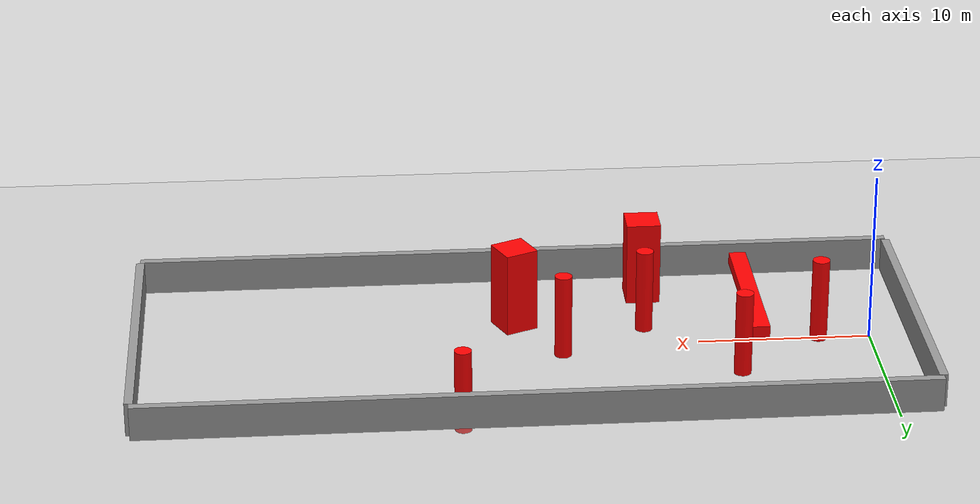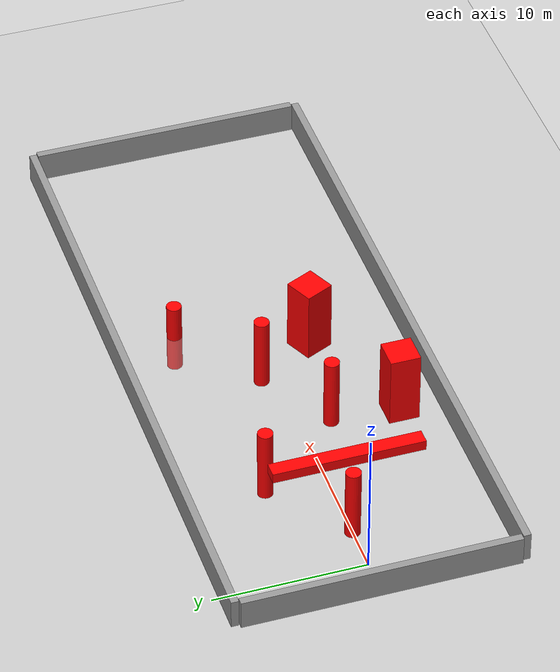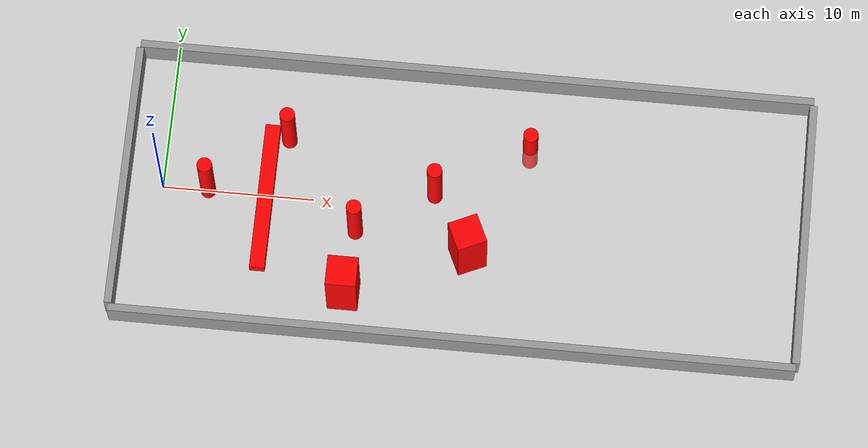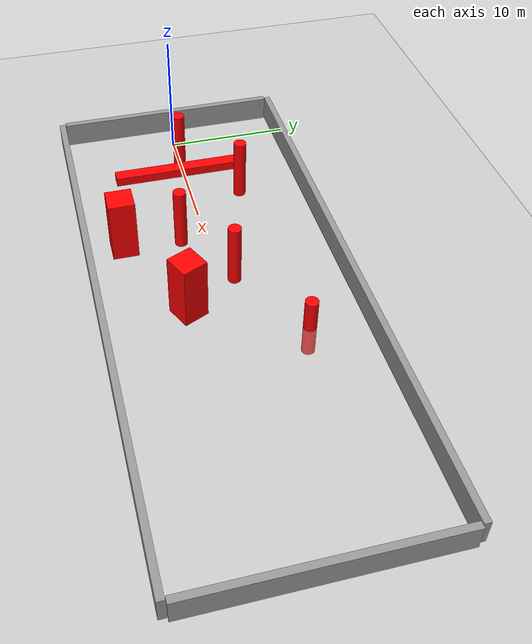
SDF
<sdf version="1.7">
 <world name="default">
  <light name="sun" type="directional">
   <pose>0 0 10 0 -0 0</pose>
   <diffuse>0.8 0.8 0.8 1</diffuse>
   <specular>0.2 0.2 0.2 1</specular>
   <attenuation>
    <range>1000</range>
    <constant>0.9</constant>
    <linear>0.01</linear>
    <quadratic>0.001</quadratic>
   </attenuation>
   <direction>-0.5 0.1 -0.9</direction>
   <spot><inner_angle>0</inner_angle><outer_angle>0</outer_angle><falloff>0</falloff></spot>
  </light>
  <light name="user_directional_light_0" type="directional">
   <pose>10 0 40 0 -0 0</pose>
   <diffuse>0.5 0.5 0.5 1</diffuse>
   <specular>0.1 0.1 0.1 1</specular>
   <direction>0.1 0.0 -0.1</direction>
   <attenuation>
    <range>20</range>
    <constant>0.5</constant>
    <linear>0.01</linear>
    <quadratic>0.001</quadratic>
   </attenuation>
  </light>
  <model name="ground_plane">
   <static>1</static>
   <link name="link">
    <collision name="collision">
     <geometry><plane><normal>0 0 1</normal><size>100 100</size></plane></geometry>
    </collision>
    <visual name="visual">
     <cast_shadows>0</cast_shadows>
     <geometry><plane><normal>0 0 1</normal><size>100 100</size></plane></geometry>
     <material>
      <script><uri>file://media/materials/scripts/gazebo.material</uri><name>Gazebo/Grey</name></script>
     </material>
    </visual>
   </link>
  </model>
  <gravity>0 0 -9.8</gravity>
  <magnetic_field>6e-06 2.3e-05 -4.2e-05</magnetic_field>
  <atmosphere type="adiabatic"/>
  <physics type="ode">
   <max_step_size>0.004</max_step_size>
   <real_time_factor>1</real_time_factor>
   <real_time_update_rate>250</real_time_update_rate>
  </physics>
  <scene><ambient>0.4 0.4 0.4 1</ambient><background>0.7 0.7 0.7 1</background><shadows>1</shadows></scene>
  <spherical_coordinates>
   <surface_model>EARTH_WGS84</surface_model>
   <latitude_deg>0</latitude_deg>
   <longitude_deg>0</longitude_deg>
   <elevation>0</elevation>
   <heading_deg>0</heading_deg>
  </spherical_coordinates>
  <model name="pillar01">
   <link name="link">
    <inertial>
     <mass>700</mass>
     <inertia><ixx>116.667</ixx><ixy>0</ixy><ixz>0</ixz><iyy>116.667</iyy><iyz>0</iyz><izz>116.667</izz></inertia>
    </inertial>
    <visual name="visual">
     <geometry><box><size>1.0 10 0.7</size></box></geometry>
     <material>
      <script><name>Gazebo/Grey</name><uri>file://media/materials/scripts/gazebo.material</uri></script>
      <shader type="pixel"><normal_map>__default__</normal_map></shader>
      <ambient>1 0 0 0</ambient>
      <diffuse>0.7 0.7 0.7 1</diffuse>
      <specular>0.01 0.01 0.01 1</specular>
      <emissive>0 0 0 1</emissive>
     </material>
     <pose>0 0 2.5 0 -0 0</pose>
    </visual>
    <collision name="collision">
     <pose>0 0 2.5 0 -0 0</pose>
     <geometry><box><size>1.0 10 0.7</size></box></geometry>
    </collision>
   </link>
   <static>0</static>
   <pose>7 -1.0 0.0 0 0.0 0.0</pose>
  </model>
  <model name="pillar02">
   <link name="link">
    <inertial>
     <mass>700</mass>
     <inertia><ixx>116.667</ixx><ixy>0</ixy><ixz>0</ixz><iyy>116.667</iyy><iyz>0</iyz><izz>116.667</izz></inertia>
    </inertial>
    <visual name="visual">
     <geometry><box><size>2 2 5</size></box></geometry>
     <material>
      <script><name>Gazebo/Grey</name><uri>file://media/materials/scripts/gazebo.material</uri></script>
      <shader type="pixel"><normal_map>__default__</normal_map></shader>
      <ambient>1 0 0 0</ambient>
      <diffuse>0.7 0.7 0.7 1</diffuse>
      <specular>0.01 0.01 0.01 1</specular>
      <emissive>0 0 0 1</emissive>
     </material>
     <pose>0 0 2.5 0 -0 0</pose>
    </visual>
    <collision name="collision">
     <pose>0 0 2.5 0 -0 0</pose>
     <geometry><box><size>2 2 5</size></box></geometry>
     <surface>
      <friction>
       <ode><mu>1</mu><mu2>1</mu2><fdir1>0 0 0</fdir1><slip1>0</slip1><slip2>0</slip2></ode>
       <torsional>
        <coefficient>1</coefficient>
        <patch_radius>0</patch_radius>
        <surface_radius>0</surface_radius>
        <use_patch_radius>1</use_patch_radius>
        <ode><slip>0</slip></ode>
       </torsional>
      </friction>
      <bounce><restitution_coefficient>0</restitution_coefficient><threshold>1e+06</threshold></bounce>
      <contact>
       <collide_without_contact>0</collide_without_contact>
       <collide_without_contact_bitmask>1</collide_without_contact_bitmask>
       <collide_bitmask>1</collide_bitmask>
       <ode>
        <soft_cfm>0</soft_cfm>
        <soft_erp>0.2</soft_erp>
        <kp>1e+13</kp>
        <kd>1</kd>
        <max_vel>0.01</max_vel>
        <min_depth>0</min_depth>
       </ode>
       <bullet>
        <split_impulse>1</split_impulse>
        <split_impulse_penetration_threshold>-0.01</split_impulse_penetration_threshold>
        <soft_cfm>0</soft_cfm>
        <soft_erp>0.2</soft_erp>
        <kp>1e+13</kp>
        <kd>1</kd>
       </bullet>
      </contact>
     </surface>
    </collision>
   </link>
   <static>0</static>
   <pose>20.5296 -3.03944 0 0 -0 2</pose>
  </model>
  <model name="pillar03">
   <link name="link">
    <inertial>
     <mass>700</mass>
     <inertia><ixx>116.667</ixx><ixy>0</ixy><ixz>0</ixz><iyy>116.667</iyy><iyz>0</iyz><izz>116.667</izz></inertia>
    </inertial>
    <visual name="visual">
     <geometry><box><size>2 2 5</size></box></geometry>
     <material>
      <script><name>Gazebo/Grey</name><uri>file://media/materials/scripts/gazebo.material</uri></script>
      <shader type="pixel"><normal_map>__default__</normal_map></shader>
      <ambient>1 0 0 0</ambient>
      <diffuse>0.7 0.7 0.7 1</diffuse>
      <specular>0.01 0.01 0.01 1</specular>
      <emissive>0 0 0 1</emissive>
     </material>
     <pose>0 0 2.5 0 -0 0</pose>
    </visual>
    <collision name="collision">
     <pose>0 0 2.5 0 -0 0</pose>
     <geometry><box><size>2 2 5</size></box></geometry>
     <surface>
      <friction>
       <ode><mu>1</mu><mu2>1</mu2><fdir1>0 0 0</fdir1><slip1>0</slip1><slip2>0</slip2></ode>
       <torsional>
        <coefficient>1</coefficient>
        <patch_radius>0</patch_radius>
        <surface_radius>0</surface_radius>
        <use_patch_radius>1</use_patch_radius>
        <ode><slip>0</slip></ode>
       </torsional>
      </friction>
      <bounce><restitution_coefficient>0</restitution_coefficient><threshold>1e+06</threshold></bounce>
      <contact>
       <collide_without_contact>0</collide_without_contact>
       <collide_without_contact_bitmask>1</collide_without_contact_bitmask>
       <collide_bitmask>1</collide_bitmask>
       <ode>
        <soft_cfm>0</soft_cfm>
        <soft_erp>0.2</soft_erp>
        <kp>1e+13</kp>
        <kd>1</kd>
        <max_vel>0.01</max_vel>
        <min_depth>0</min_depth>
       </ode>
       <bullet>
        <split_impulse>1</split_impulse>
        <split_impulse_penetration_threshold>-0.01</split_impulse_penetration_threshold>
        <soft_cfm>0</soft_cfm>
        <soft_erp>0.2</soft_erp>
        <kp>1e+13</kp>
        <kd>1</kd>
       </bullet>
      </contact>
     </surface>
    </collision>
   </link>
   <static>0</static>
   <pose>12.6722 -6.43952 0 0 -0 0</pose>
  </model>
  <model name="pillar04">
   <link name="link">
    <inertial>
     <mass>2748.89</mass>
     <inertia><ixx>5898.67</ixx><ixy>0</ixy><ixz>0</ixz><iyy>5898.67</iyy><iyz>0</iyz><izz>343.612</izz></inertia>
    </inertial>
    <visual name="visual">
     <geometry><cylinder><radius>0.5</radius><length>5</length></cylinder></geometry>
     <material>
      <script><name>Gazebo/Grey</name><uri>file://media/materials/scripts/gazebo.material</uri></script>
      <shader type="pixel"><normal_map>__default__</normal_map></shader>
      <ambient>0 0 0 1</ambient>
      <diffuse>1 0 0 1</diffuse>
      <specular>0 0 0 1</specular>
      <emissive>0 0 0 1</emissive>
     </material>
    </visual>
    <collision name="collision">
     <geometry><cylinder><radius>0.5</radius><length>5</length></cylinder></geometry>
     <surface>
      <friction>
       <ode><mu>1</mu><mu2>1</mu2><fdir1>0 0 0</fdir1><slip1>0</slip1><slip2>0</slip2></ode>
       <torsional>
        <coefficient>1</coefficient>
        <patch_radius>0</patch_radius>
        <surface_radius>0</surface_radius>
        <use_patch_radius>1</use_patch_radius>
        <ode><slip>0</slip></ode>
       </torsional>
      </friction>
      <bounce><restitution_coefficient>0</restitution_coefficient><threshold>1e+06</threshold></bounce>
      <contact>
       <collide_without_contact>0</collide_without_contact>
       <collide_without_contact_bitmask>1</collide_without_contact_bitmask>
       <collide_bitmask>1</collide_bitmask>
       <ode>
        <soft_cfm>0</soft_cfm>
        <soft_erp>0.2</soft_erp>
        <kp>1e+13</kp>
        <kd>1</kd>
        <max_vel>0.01</max_vel>
        <min_depth>0</min_depth>
       </ode>
       <bullet>
        <split_impulse>1</split_impulse>
        <split_impulse_penetration_threshold>-0.01</split_impulse_penetration_threshold>
        <soft_cfm>0</soft_cfm>
        <soft_erp>0.2</soft_erp>
        <kp>1e+13</kp>
        <kd>1</kd>
       </bullet>
      </contact>
     </surface>
    </collision>
   </link>
   <static>0</static>
   <pose>3 0 2.5 0 -0 0</pose>
  </model>
  <model name="pillar05">
   <link name="link">
    <inertial>
     <mass>2748.89</mass>
     <inertia><ixx>5898.67</ixx><ixy>0</ixy><ixz>0</ixz><iyy>5898.67</iyy><iyz>0</iyz><izz>343.612</izz></inertia>
    </inertial>
    <visual name="visual">
     <geometry><cylinder><radius>0.5</radius><length>5</length></cylinder></geometry>
     <material>
      <script><name>Gazebo/Grey</name><uri>file://media/materials/scripts/gazebo.material</uri></script>
      <shader type="pixel"><normal_map>__default__</normal_map></shader>
      <ambient>0 0 0 1</ambient>
      <diffuse>1 0 0 1</diffuse>
      <specular>0 0 0 1</specular>
      <emissive>0 0 0 1</emissive>
     </material>
    </visual>
    <collision name="collision">
     <geometry><cylinder><radius>0.5</radius><length>5</length></cylinder></geometry>
     <surface>
      <friction>
       <ode><mu>1</mu><mu2>1</mu2><fdir1>0 0 0</fdir1><slip1>0</slip1><slip2>0</slip2></ode>
       <torsional>
        <coefficient>1</coefficient>
        <patch_radius>0</patch_radius>
        <surface_radius>0</surface_radius>
        <use_patch_radius>1</use_patch_radius>
        <ode><slip>0</slip></ode>
       </torsional>
      </friction>
      <bounce><restitution_coefficient>0</restitution_coefficient><threshold>1e+06</threshold></bounce>
      <contact>
       <collide_without_contact>0</collide_without_contact>
       <collide_without_contact_bitmask>1</collide_without_contact_bitmask>
       <collide_bitmask>1</collide_bitmask>
       <ode>
        <soft_cfm>0</soft_cfm>
        <soft_erp>0.2</soft_erp>
        <kp>1e+13</kp>
        <kd>1</kd>
        <max_vel>0.01</max_vel>
        <min_depth>0</min_depth>
       </ode>
       <bullet>
        <split_impulse>1</split_impulse>
        <split_impulse_penetration_threshold>-0.01</split_impulse_penetration_threshold>
        <soft_cfm>0</soft_cfm>
        <soft_erp>0.2</soft_erp>
        <kp>1e+13</kp>
        <kd>1</kd>
       </bullet>
      </contact>
     </surface>
    </collision>
   </link>
   <static>0</static>
   <pose>8 4 2.5 0 -0 0</pose>
  </model>
  <model name="pillar06">
   <link name="link">
    <inertial>
     <mass>2748.89</mass>
     <inertia><ixx>5898.67</ixx><ixy>0</ixy><ixz>0</ixz><iyy>5898.67</iyy><iyz>0</iyz><izz>343.612</izz></inertia>
    </inertial>
    <visual name="visual">
     <geometry><cylinder><radius>0.5</radius><length>5</length></cylinder></geometry>
     <material>
      <script><name>Gazebo/Grey</name><uri>file://media/materials/scripts/gazebo.material</uri></script>
      <shader type="pixel"><normal_map>__default__</normal_map></shader>
      <ambient>0 0 0 1</ambient>
      <diffuse>1 0 0 1</diffuse>
      <specular>0 0 0 1</specular>
      <emissive>0 0 0 1</emissive>
     </material>
    </visual>
    <collision name="collision">
     <geometry><cylinder><radius>0.5</radius><length>5</length></cylinder></geometry>
     <surface>
      <friction>
       <ode><mu>1</mu><mu2>1</mu2><fdir1>0 0 0</fdir1><slip1>0</slip1><slip2>0</slip2></ode>
       <torsional>
        <coefficient>1</coefficient>
        <patch_radius>0</patch_radius>
        <surface_radius>0</surface_radius>
        <use_patch_radius>1</use_patch_radius>
        <ode><slip>0</slip></ode>
       </torsional>
      </friction>
      <bounce><restitution_coefficient>0</restitution_coefficient><threshold>1e+06</threshold></bounce>
      <contact>
       <collide_without_contact>0</collide_without_contact>
       <collide_without_contact_bitmask>1</collide_without_contact_bitmask>
       <collide_bitmask>1</collide_bitmask>
       <ode>
        <soft_cfm>0</soft_cfm>
        <soft_erp>0.2</soft_erp>
        <kp>1e+13</kp>
        <kd>1</kd>
        <max_vel>0.01</max_vel>
        <min_depth>0</min_depth>
       </ode>
       <bullet>
        <split_impulse>1</split_impulse>
        <split_impulse_penetration_threshold>-0.01</split_impulse_penetration_threshold>
        <soft_cfm>0</soft_cfm>
        <soft_erp>0.2</soft_erp>
        <kp>1e+13</kp>
        <kd>1</kd>
       </bullet>
      </contact>
     </surface>
    </collision>
   </link>
   <static>0</static>
   <pose>13 -2 2.5 0 -0 0</pose>
  </model>
  <model name="pillar07">
   <link name="link">
    <inertial>
     <mass>2748.89</mass>
     <inertia><ixx>5898.67</ixx><ixy>0</ixy><ixz>0</ixz><iyy>5898.67</iyy><iyz>0</iyz><izz>343.612</izz></inertia>
    </inertial>
    <visual name="visual">
     <geometry><cylinder><radius>0.5</radius><length>5</length></cylinder></geometry>
     <material>
      <script><name>Gazebo/Grey</name><uri>file://media/materials/scripts/gazebo.material</uri></script>
      <shader type="pixel"><normal_map>__default__</normal_map></shader>
      <ambient>0 0 0 1</ambient>
      <diffuse>1 0 0 1</diffuse>
      <specular>0 0 0 1</specular>
      <emissive>0 0 0 1</emissive>
     </material>
    </visual>
    <collision name="collision">
     <geometry><cylinder><radius>0.5</radius><length>5</length></cylinder></geometry>
     <surface>
      <friction>
       <ode><mu>1</mu><mu2>1</mu2><fdir1>0 0 0</fdir1><slip1>0</slip1><slip2>0</slip2></ode>
       <torsional>
        <coefficient>1</coefficient>
        <patch_radius>0</patch_radius>
        <surface_radius>0</surface_radius>
        <use_patch_radius>1</use_patch_radius>
        <ode><slip>0</slip></ode>
       </torsional>
      </friction>
      <bounce><restitution_coefficient>0</restitution_coefficient><threshold>1e+06</threshold></bounce>
      <contact>
       <collide_without_contact>0</collide_without_contact>
       <collide_without_contact_bitmask>1</collide_without_contact_bitmask>
       <collide_bitmask>1</collide_bitmask>
       <ode>
        <soft_cfm>0</soft_cfm>
        <soft_erp>0.2</soft_erp>
        <kp>1e+13</kp>
        <kd>1</kd>
        <max_vel>0.01</max_vel>
        <min_depth>0</min_depth>
       </ode>
       <bullet>
        <split_impulse>1</split_impulse>
        <split_impulse_penetration_threshold>-0.01</split_impulse_penetration_threshold>
        <soft_cfm>0</soft_cfm>
        <soft_erp>0.2</soft_erp>
        <kp>1e+13</kp>
        <kd>1</kd>
       </bullet>
      </contact>
     </surface>
    </collision>
   </link>
   <static>0</static>
   <pose>18 1 2.5 0 -0 0</pose>
  </model>
  <model name="pillar11">
   <link name="link">
    <inertial>
     <mass>2748.89</mass>
     <inertia><ixx>5898.67</ixx><ixy>0</ixy><ixz>0</ixz><iyy>5898.67</iyy><iyz>0</iyz><izz>343.612</izz></inertia>
    </inertial>
    <visual name="visual">
     <geometry><cylinder><radius>0.5</radius><length>5</length></cylinder></geometry>
     <material>
      <script><name>Gazebo/Grey</name><uri>file://media/materials/scripts/gazebo.material</uri></script>
      <shader type="pixel"><normal_map>__default__</normal_map></shader>
      <ambient>0 0 0 1</ambient>
      <diffuse>1 0 0 1</diffuse>
      <specular>0 0 0 1</specular>
      <emissive>0 0 0 1</emissive>
     </material>
    </visual>
    <collision name="collision">
     <geometry><cylinder><radius>0.5</radius><length>5</length></cylinder></geometry>
     <surface>
      <friction>
       <ode><mu>1</mu><mu2>1</mu2><fdir1>0 0 0</fdir1><slip1>0</slip1><slip2>0</slip2></ode>
       <torsional>
        <coefficient>1</coefficient>
        <patch_radius>0</patch_radius>
        <surface_radius>0</surface_radius>
        <use_patch_radius>1</use_patch_radius>
        <ode><slip>0</slip></ode>
       </torsional>
      </friction>
      <bounce><restitution_coefficient>0</restitution_coefficient><threshold>1e+06</threshold></bounce>
      <contact>
       <collide_without_contact>0</collide_without_contact>
       <collide_without_contact_bitmask>1</collide_without_contact_bitmask>
       <collide_bitmask>1</collide_bitmask>
       <ode>
        <soft_cfm>0</soft_cfm>
        <soft_erp>0.2</soft_erp>
        <kp>1e+13</kp>
        <kd>1</kd>
        <max_vel>0.01</max_vel>
        <min_depth>0</min_depth>
       </ode>
       <bullet>
        <split_impulse>1</split_impulse>
        <split_impulse_penetration_threshold>-0.01</split_impulse_penetration_threshold>
        <soft_cfm>0</soft_cfm>
        <soft_erp>0.2</soft_erp>
        <kp>1e+13</kp>
        <kd>1</kd>
       </bullet>
      </contact>
     </surface>
    </collision>
   </link>
   <static>0</static>
   <pose>24 5.0 0.0 0 0.0 0.0</pose>
  </model>
  <model name="fence01">
   <link name="link">
    <inertial>
     <mass>7000</mass>
     <inertia>
      <ixx>1160.667</ixx>
      <ixy>0</ixy>
      <ixz>0</ixz>
      <iyy>1160.667</iyy>
      <iyz>0</iyz>
      <izz>1160.667</izz>
     </inertia>
    </inertial>
    <visual name="visual">
     <geometry><box><size>0.5 18 2.0</size></box></geometry>
     <material>
      <script><name>Gazebo/Grey</name><uri>file://media/materials/scripts/gazebo.material</uri></script>
      <shader type="pixel"><normal_map>__default__</normal_map></shader>
      <ambient>1 1 1 0</ambient>
      <diffuse>0.7 0.7 0.7 1</diffuse>
      <specular>0.01 0.01 0.01 1</specular>
      <emissive>0 0 0 1</emissive>
     </material>
     <pose>0 0 1 0 -0 0</pose>
    </visual>
    <collision name="collision">
     <pose>0 0 1 0 -0 0</pose>
     <geometry><box><size>0.5 18 2.0</size></box></geometry>
    </collision>
   </link>
   <static>1</static>
   <pose>-2.5 0 0 0 -0 0</pose>
  </model>
  <model name="fence02">
   <link name="link">
    <inertial>
     <mass>7000</mass>
     <inertia>
      <ixx>1160.667</ixx>
      <ixy>0</ixy>
      <ixz>0</ixz>
      <iyy>1160.667</iyy>
      <iyz>0</iyz>
      <izz>1160.667</izz>
     </inertia>
    </inertial>
    <visual name="visual">
     <geometry><box><size>0.5 18 2.0</size></box></geometry>
     <material>
      <script><name>Gazebo/Grey</name><uri>file://media/materials/scripts/gazebo.material</uri></script>
      <shader type="pixel"><normal_map>__default__</normal_map></shader>
      <ambient>1 1 1 0</ambient>
      <diffuse>0.7 0.7 0.7 1</diffuse>
      <specular>0.01 0.01 0.01 1</specular>
      <emissive>0 0 0 1</emissive>
     </material>
     <pose>0 0 1 0 -0 0</pose>
    </visual>
    <collision name="collision">
     <pose>0 0 1 0 -0 0</pose>
     <geometry><box><size>0.5 18 2.0</size></box></geometry>
    </collision>
   </link>
   <static>1</static>
   <pose>42.5 0 0 0 -0 0</pose>
  </model>
  <model name="fence03">
   <link name="link">
    <inertial>
     <mass>7000</mass>
     <inertia>
      <ixx>1160.667</ixx>
      <ixy>0</ixy>
      <ixz>0</ixz>
      <iyy>1160.667</iyy>
      <iyz>0</iyz>
      <izz>1160.667</izz>
     </inertia>
    </inertial>
    <visual name="visual">
     <geometry><box><size>45 0.5 2</size></box></geometry>
     <material>
      <script><name>Gazebo/Grey</name><uri>file://media/materials/scripts/gazebo.material</uri></script>
      <shader type="pixel"><normal_map>__default__</normal_map></shader>
      <ambient>1 1 1 0</ambient>
      <diffuse>0.7 0.7 0.7 1</diffuse>
      <specular>0.01 0.01 0.01 1</specular>
      <emissive>0 0 0 1</emissive>
     </material>
     <pose>0 0 1 0 -0 0</pose>
    </visual>
    <collision name="collision">
     <pose>0 0 1 0 -0 0</pose>
     <geometry><box><size>45 0.5 2</size></box></geometry>
    </collision>
   </link>
   <static>1</static>
   <pose>20 -9.3 0 0 -0 0</pose>
  </model>
  <model name="fence04">
   <link name="link">
    <inertial>
     <mass>7000</mass>
     <inertia>
      <ixx>1160.667</ixx>
      <ixy>0</ixy>
      <ixz>0</ixz>
      <iyy>1160.667</iyy>
      <iyz>0</iyz>
      <izz>1160.667</izz>
     </inertia>
    </inertial>
    <visual name="visual">
     <geometry><box><size>45 0.5 2</size></box></geometry>
     <material>
      <script><name>Gazebo/Grey</name><uri>file://media/materials/scripts/gazebo.material</uri></script>
      <shader type="pixel"><normal_map>__default__</normal_map></shader>
      <ambient>1 1 1 0</ambient>
      <diffuse>0.7 0.7 0.7 1</diffuse>
      <specular>0.01 0.01 0.01 1</specular>
      <emissive>0 0 0 1</emissive>
     </material>
     <pose>0 0 1 0 -0 0</pose>
    </visual>
    <collision name="collision">
     <pose>0 0 1 0 -0 0</pose>
     <geometry><box><size>45 0.5 2</size></box></geometry>
    </collision>
   </link>
   <static>1</static>
   <pose>20 9.3 0 0 -0 0</pose>
  </model>
 </world>
</sdf>
